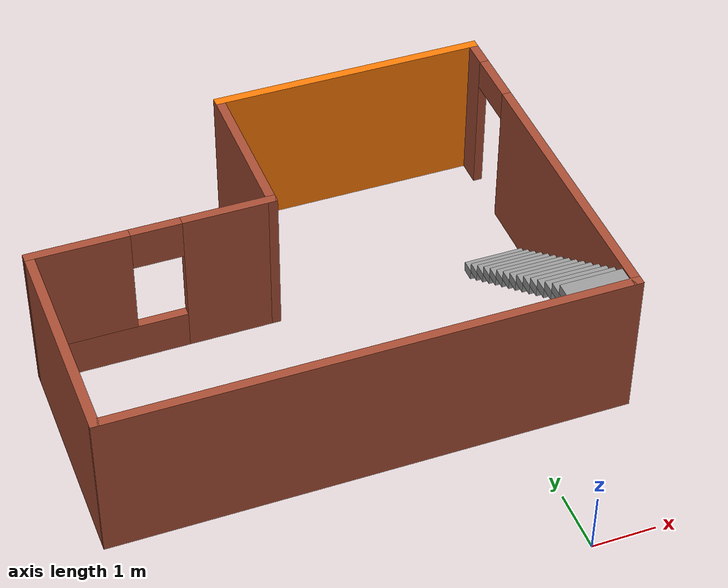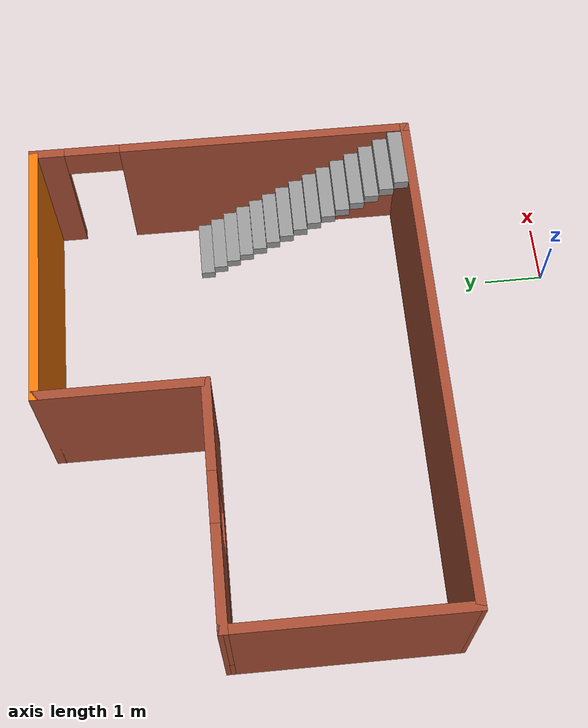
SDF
<?xml version='1.0'?>
<sdf version='1.6'>
  <model name='office'>
    <pose frame=''>-2.39856 5.48555 0 0 -0 0</pose>
    <link name='Stairs_0'>
      <visual name='Stairs_0_Visual_0'>
        <pose frame=''>3.46197 0.405401 0.083333 0 -0 0</pose>
        <geometry>
          <box>
            <size>1 0.233333 0.166667</size>
          </box>
        </geometry>
        <material>
          <script>
            <uri>file://media/materials/scripts/gazebo.material</uri>
            <name>Gazebo/Grey</name>
          </script>
          <ambient>1 1 1 1</ambient>
        </material>
        <meta>
          <layer>0</layer>
        </meta>
      </visual>
      <collision name='Stairs_0_Collision_0'>
        <geometry>
          <box>
            <size>1 0.233333 0.166667</size>
          </box>
        </geometry>
        <pose frame=''>3.46197 0.405401 0.083333 0 -0 0</pose>
      </collision>
      <visual name='Stairs_0_Visual_1'>
        <pose frame=''>3.46197 0.172068 0.25 0 -0 0</pose>
        <geometry>
          <box>
            <size>1 0.233333 0.166667</size>
          </box>
        </geometry>
        <material>
          <script>
            <uri>file://media/materials/scripts/gazebo.material</uri>
            <name>Gazebo/Grey</name>
          </script>
          <ambient>1 1 1 1</ambient>
        </material>
        <meta>
          <layer>0</layer>
        </meta>
      </visual>
      <collision name='Stairs_0_Collision_1'>
        <geometry>
          <box>
            <size>1 0.233333 0.166667</size>
          </box>
        </geometry>
        <pose frame=''>3.46197 0.172068 0.25 0 -0 0</pose>
      </collision>
      <visual name='Stairs_0_Visual_2'>
        <pose frame=''>3.46197 -0.061265 0.416667 0 -0 0</pose>
        <geometry>
          <box>
            <size>1 0.233333 0.166667</size>
          </box>
        </geometry>
        <material>
          <script>
            <uri>file://media/materials/scripts/gazebo.material</uri>
            <name>Gazebo/Grey</name>
          </script>
          <ambient>1 1 1 1</ambient>
        </material>
        <meta>
          <layer>0</layer>
        </meta>
      </visual>
      <collision name='Stairs_0_Collision_2'>
        <geometry>
          <box>
            <size>1 0.233333 0.166667</size>
          </box>
        </geometry>
        <pose frame=''>3.46197 -0.061265 0.416667 0 -0 0</pose>
      </collision>
      <visual name='Stairs_0_Visual_3'>
        <pose frame=''>3.46197 -0.294599 0.583333 0 -0 0</pose>
        <geometry>
          <box>
            <size>1 0.233333 0.166667</size>
          </box>
        </geometry>
        <material>
          <script>
            <uri>file://media/materials/scripts/gazebo.material</uri>
            <name>Gazebo/Grey</name>
          </script>
          <ambient>1 1 1 1</ambient>
        </material>
        <meta>
          <layer>0</layer>
        </meta>
      </visual>
      <collision name='Stairs_0_Collision_3'>
        <geometry>
          <box>
            <size>1 0.233333 0.166667</size>
          </box>
        </geometry>
        <pose frame=''>3.46197 -0.294599 0.583333 0 -0 0</pose>
      </collision>
      <visual name='Stairs_0_Visual_4'>
        <pose frame=''>3.46197 -0.527932 0.75 0 -0 0</pose>
        <geometry>
          <box>
            <size>1 0.233333 0.166667</size>
          </box>
        </geometry>
        <material>
          <script>
            <uri>file://media/materials/scripts/gazebo.material</uri>
            <name>Gazebo/Grey</name>
          </script>
          <ambient>1 1 1 1</ambient>
        </material>
        <meta>
          <layer>0</layer>
        </meta>
      </visual>
      <collision name='Stairs_0_Collision_4'>
        <geometry>
          <box>
            <size>1 0.233333 0.166667</size>
          </box>
        </geometry>
        <pose frame=''>3.46197 -0.527932 0.75 0 -0 0</pose>
      </collision>
      <visual name='Stairs_0_Visual_5'>
        <pose frame=''>3.46197 -0.761266 0.916667 0 -0 0</pose>
        <geometry>
          <box>
            <size>1 0.233333 0.166667</size>
          </box>
        </geometry>
        <material>
          <script>
            <uri>file://media/materials/scripts/gazebo.material</uri>
            <name>Gazebo/Grey</name>
          </script>
          <ambient>1 1 1 1</ambient>
        </material>
        <meta>
          <layer>0</layer>
        </meta>
      </visual>
      <collision name='Stairs_0_Collision_5'>
        <geometry>
          <box>
            <size>1 0.233333 0.166667</size>
          </box>
        </geometry>
        <pose frame=''>3.46197 -0.761266 0.916667 0 -0 0</pose>
      </collision>
      <visual name='Stairs_0_Visual_6'>
        <pose frame=''>3.46197 -0.994599 1.08333 0 -0 0</pose>
        <geometry>
          <box>
            <size>1 0.233333 0.166667</size>
          </box>
        </geometry>
        <material>
          <script>
            <uri>file://media/materials/scripts/gazebo.material</uri>
            <name>Gazebo/Grey</name>
          </script>
          <ambient>1 1 1 1</ambient>
        </material>
        <meta>
          <layer>0</layer>
        </meta>
      </visual>
      <collision name='Stairs_0_Collision_6'>
        <geometry>
          <box>
            <size>1 0.233333 0.166667</size>
          </box>
        </geometry>
        <pose frame=''>3.46197 -0.994599 1.08333 0 -0 0</pose>
      </collision>
      <visual name='Stairs_0_Visual_7'>
        <pose frame=''>3.46197 -1.22793 1.25 0 -0 0</pose>
        <geometry>
          <box>
            <size>1 0.233333 0.166667</size>
          </box>
        </geometry>
        <material>
          <script>
            <uri>file://media/materials/scripts/gazebo.material</uri>
            <name>Gazebo/Grey</name>
          </script>
          <ambient>1 1 1 1</ambient>
        </material>
        <meta>
          <layer>0</layer>
        </meta>
      </visual>
      <collision name='Stairs_0_Collision_7'>
        <geometry>
          <box>
            <size>1 0.233333 0.166667</size>
          </box>
        </geometry>
        <pose frame=''>3.46197 -1.22793 1.25 0 -0 0</pose>
      </collision>
      <visual name='Stairs_0_Visual_8'>
        <pose frame=''>3.46197 -1.46127 1.41667 0 -0 0</pose>
        <geometry>
          <box>
            <size>1 0.233333 0.166667</size>
          </box>
        </geometry>
        <material>
          <script>
            <uri>file://media/materials/scripts/gazebo.material</uri>
            <name>Gazebo/Grey</name>
          </script>
          <ambient>1 1 1 1</ambient>
        </material>
        <meta>
          <layer>0</layer>
        </meta>
      </visual>
      <collision name='Stairs_0_Collision_8'>
        <geometry>
          <box>
            <size>1 0.233333 0.166667</size>
          </box>
        </geometry>
        <pose frame=''>3.46197 -1.46127 1.41667 0 -0 0</pose>
      </collision>
      <visual name='Stairs_0_Visual_9'>
        <pose frame=''>3.46197 -1.6946 1.58333 0 -0 0</pose>
        <geometry>
          <box>
            <size>1 0.233333 0.166667</size>
          </box>
        </geometry>
        <material>
          <script>
            <uri>file://media/materials/scripts/gazebo.material</uri>
            <name>Gazebo/Grey</name>
          </script>
          <ambient>1 1 1 1</ambient>
        </material>
        <meta>
          <layer>0</layer>
        </meta>
      </visual>
      <collision name='Stairs_0_Collision_9'>
        <geometry>
          <box>
            <size>1 0.233333 0.166667</size>
          </box>
        </geometry>
        <pose frame=''>3.46197 -1.6946 1.58333 0 -0 0</pose>
      </collision>
      <visual name='Stairs_0_Visual_10'>
        <pose frame=''>3.46197 -1.92793 1.75 0 -0 0</pose>
        <geometry>
          <box>
            <size>1 0.233333 0.166667</size>
          </box>
        </geometry>
        <material>
          <script>
            <uri>file://media/materials/scripts/gazebo.material</uri>
            <name>Gazebo/Grey</name>
          </script>
          <ambient>1 1 1 1</ambient>
        </material>
        <meta>
          <layer>0</layer>
        </meta>
      </visual>
      <collision name='Stairs_0_Collision_10'>
        <geometry>
          <box>
            <size>1 0.233333 0.166667</size>
          </box>
        </geometry>
        <pose frame=''>3.46197 -1.92793 1.75 0 -0 0</pose>
      </collision>
      <visual name='Stairs_0_Visual_11'>
        <pose frame=''>3.46197 -2.16127 1.91667 0 -0 0</pose>
        <geometry>
          <box>
            <size>1 0.233333 0.166667</size>
          </box>
        </geometry>
        <material>
          <script>
            <uri>file://media/materials/scripts/gazebo.material</uri>
            <name>Gazebo/Grey</name>
          </script>
          <ambient>1 1 1 1</ambient>
        </material>
        <meta>
          <layer>0</layer>
        </meta>
      </visual>
      <collision name='Stairs_0_Collision_11'>
        <geometry>
          <box>
            <size>1 0.233333 0.166667</size>
          </box>
        </geometry>
        <pose frame=''>3.46197 -2.16127 1.91667 0 -0 0</pose>
      </collision>
      <visual name='Stairs_0_Visual_12'>
        <pose frame=''>3.46197 -2.3946 2.08333 0 -0 0</pose>
        <geometry>
          <box>
            <size>1 0.233333 0.166667</size>
          </box>
        </geometry>
        <material>
          <script>
            <uri>file://media/materials/scripts/gazebo.material</uri>
            <name>Gazebo/Grey</name>
          </script>
          <ambient>1 1 1 1</ambient>
        </material>
        <meta>
          <layer>0</layer>
        </meta>
      </visual>
      <collision name='Stairs_0_Collision_12'>
        <geometry>
          <box>
            <size>1 0.233333 0.166667</size>
          </box>
        </geometry>
        <pose frame=''>3.46197 -2.3946 2.08333 0 -0 0</pose>
      </collision>
      <visual name='Stairs_0_Visual_13'>
        <pose frame=''>3.46197 -2.62793 2.25 0 -0 0</pose>
        <geometry>
          <box>
            <size>1 0.233333 0.166667</size>
          </box>
        </geometry>
        <material>
          <script>
            <uri>file://media/materials/scripts/gazebo.material</uri>
            <name>Gazebo/Grey</name>
          </script>
          <ambient>1 1 1 1</ambient>
        </material>
        <meta>
          <layer>0</layer>
        </meta>
      </visual>
      <collision name='Stairs_0_Collision_13'>
        <geometry>
          <box>
            <size>1 0.233333 0.166667</size>
          </box>
        </geometry>
        <pose frame=''>3.46197 -2.62793 2.25 0 -0 0</pose>
      </collision>
      <visual name='Stairs_0_Visual_14'>
        <pose frame=''>3.46197 -2.86126 2.41667 0 -0 0</pose>
        <geometry>
          <box>
            <size>1 0.233333 0.166667</size>
          </box>
        </geometry>
        <material>
          <script>
            <uri>file://media/materials/scripts/gazebo.material</uri>
            <name>Gazebo/Grey</name>
          </script>
          <ambient>1 1 1 1</ambient>
        </material>
        <meta>
          <layer>0</layer>
        </meta>
      </visual>
      <collision name='Stairs_0_Collision_14'>
        <geometry>
          <box>
            <size>1 0.233333 0.166667</size>
          </box>
        </geometry>
        <pose frame=''>3.46197 -2.86126 2.41667 0 -0 0</pose>
      </collision>
    </link>
    <link name='Wall_10'>
      <pose frame=''>-2.17494 0.503453 0 0 -0 3.14159</pose>
      <visual name='Wall_10_Visual_0'>
        <pose frame=''>-1.20118 0 1.25 0 -0 0</pose>
        <geometry>
          <box>
            <size>1.50063 0.15 2.5</size>
          </box>
        </geometry>
        <material>
          <script>
            <uri>file://media/materials/scripts/gazebo.material</uri>
            <name>Gazebo/Bricks</name>
          </script>
          <ambient>0.996078 0.47451 0.0196078 1</ambient>
        </material>
        <meta>
          <layer>0</layer>
        </meta>
      </visual>
      <collision name='Wall_10_Collision_0'>
        <geometry>
          <box>
            <size>1.50063 0.15 2.5</size>
          </box>
        </geometry>
        <pose frame=''>-1.20118 0 1.25 0 -0 0</pose>
      </collision>
      <visual name='Wall_10_Visual_1'>
        <pose frame=''>0.750315 0 0.325 0 -0 0</pose>
        <geometry>
          <box>
            <size>2.40237 0.15 0.65</size>
          </box>
        </geometry>
        <material>
          <script>
            <uri>file://media/materials/scripts/gazebo.material</uri>
            <name>Gazebo/Bricks</name>
          </script>
          <ambient>0.996078 0.47451 0.0196078 1</ambient>
        </material>
        <meta>
          <layer>0</layer>
        </meta>
      </visual>
      <collision name='Wall_10_Collision_1'>
        <geometry>
          <box>
            <size>2.40237 0.15 0.65</size>
          </box>
        </geometry>
        <pose frame=''>0.750315 0 0.325 0 -0 0</pose>
      </collision>
      <visual name='Wall_10_Visual_2'>
        <pose frame=''>1.15031 0 1.575 0 -0 0</pose>
        <geometry>
          <box>
            <size>1.60237 0.15 1.85</size>
          </box>
        </geometry>
        <material>
          <script>
            <uri>file://media/materials/scripts/gazebo.material</uri>
            <name>Gazebo/Bricks</name>
          </script>
          <ambient>0.996078 0.47451 0.0196078 1</ambient>
        </material>
        <meta>
          <layer>0</layer>
        </meta>
      </visual>
      <collision name='Wall_10_Collision_2'>
        <geometry>
          <box>
            <size>1.60237 0.15 1.85</size>
          </box>
        </geometry>
        <pose frame=''>1.15031 0 1.575 0 -0 0</pose>
      </collision>
      <visual name='Wall_10_Visual_3'>
        <pose frame=''>-0.050871 0 2.175 0 -0 0</pose>
        <geometry>
          <box>
            <size>0.8 0.15 0.65</size>
          </box>
        </geometry>
        <material>
          <script>
            <uri>file://media/materials/scripts/gazebo.material</uri>
            <name>Gazebo/Bricks</name>
          </script>
          <ambient>0.996078 0.47451 0.0196078 1</ambient>
        </material>
        <meta>
          <layer>0</layer>
        </meta>
      </visual>
      <collision name='Wall_10_Collision_3'>
        <geometry>
          <box>
            <size>0.8 0.15 0.65</size>
          </box>
        </geometry>
        <pose frame=''>-0.050871 0 2.175 0 -0 0</pose>
      </collision>
    </link>
    <link name='Wall_5'>
      <collision name='Wall_5_Collision'>
        <geometry>
          <box>
            <size>3.7032 0.15 2.5</size>
          </box>
        </geometry>
        <pose frame=''>0 0 1.25 0 -0 0</pose>
      </collision>
      <visual name='Wall_5_Visual'>
        <pose frame=''>0 0 1.25 0 -0 0</pose>
        <geometry>
          <box>
            <size>3.7032 0.15 2.5</size>
          </box>
        </geometry>
        <material>
          <script>
            <uri>file://media/materials/scripts/gazebo.material</uri>
            <name>Gazebo/Bricks</name>
          </script>
          <ambient>0.996078 0.47451 0.0196078 1</ambient>
        </material>
        <meta>
          <layer>0</layer>
        </meta>
      </visual>
      <pose frame=''>-4.04997 -1.27332 0 0 0 -1.56997</pose>
    </link>
    <link name='Wall_6'>
      <collision name='Wall_6_Collision'>
        <geometry>
          <box>
            <size>8.25 0.15 2.5</size>
          </box>
        </geometry>
        <pose frame=''>0 0 1.25 0 -0 0</pose>
      </collision>
      <visual name='Wall_6_Visual'>
        <pose frame=''>0 0 1.25 0 -0 0</pose>
        <geometry>
          <box>
            <size>8.25 0.15 2.5</size>
          </box>
        </geometry>
        <material>
          <script>
            <uri>file://media/materials/scripts/gazebo.material</uri>
            <name>Gazebo/Bricks</name>
          </script>
          <ambient>0.996078 0.47451 0.0196078 1</ambient>
        </material>
        <meta>
          <layer>0</layer>
        </meta>
      </visual>
      <pose frame=''>0.001502 -3.05009 0 0 -0 0</pose>
    </link>
    <link name='Wall_7'>
      <pose frame=''>4.0515 -8.5e-05 0 0 -0 1.5708</pose>
      <visual name='Wall_7_Visual_0'>
        <pose frame=''>-0.738911 0 1.25 0 -0 0</pose>
        <geometry>
          <box>
            <size>4.77218 0.15 2.5</size>
          </box>
        </geometry>
        <material>
          <script>
            <uri>file://media/materials/scripts/gazebo.material</uri>
            <name>Gazebo/Bricks</name>
          </script>
          <ambient>0.996078 0.47451 0.0196078 1</ambient>
        </material>
        <meta>
          <layer>0</layer>
        </meta>
      </visual>
      <collision name='Wall_7_Collision_0'>
        <geometry>
          <box>
            <size>4.77218 0.15 2.5</size>
          </box>
        </geometry>
        <pose frame=''>-0.738911 0 1.25 0 -0 0</pose>
      </collision>
      <visual name='Wall_7_Visual_1'>
        <pose frame=''>2.83609 0 1.25 0 -0 0</pose>
        <geometry>
          <box>
            <size>0.577822 0.15 2.5</size>
          </box>
        </geometry>
        <material>
          <script>
            <uri>file://media/materials/scripts/gazebo.material</uri>
            <name>Gazebo/Bricks</name>
          </script>
          <ambient>0.996078 0.47451 0.0196078 1</ambient>
        </material>
        <meta>
          <layer>0</layer>
        </meta>
      </visual>
      <collision name='Wall_7_Collision_1'>
        <geometry>
          <box>
            <size>0.577822 0.15 2.5</size>
          </box>
        </geometry>
        <pose frame=''>2.83609 0 1.25 0 -0 0</pose>
      </collision>
      <visual name='Wall_7_Visual_2'>
        <pose frame=''>2.09718 0 2.25 0 -0 0</pose>
        <geometry>
          <box>
            <size>0.9 0.15 0.5</size>
          </box>
        </geometry>
        <material>
          <script>
            <uri>file://media/materials/scripts/gazebo.material</uri>
            <name>Gazebo/Bricks</name>
          </script>
          <ambient>0.996078 0.47451 0.0196078 1</ambient>
        </material>
        <meta>
          <layer>0</layer>
        </meta>
      </visual>
      <collision name='Wall_7_Collision_2'>
        <geometry>
          <box>
            <size>0.9 0.15 0.5</size>
          </box>
        </geometry>
        <pose frame=''>2.09718 0 2.25 0 -0 0</pose>
      </collision>
    </link>
    <link name='Wall_8'>
      <collision name='Wall_8_Collision'>
        <geometry>
          <box>
            <size>4.5 0.15 2.5</size>
          </box>
        </geometry>
        <pose frame=''>0 0 1.25 0 -0 0</pose>
      </collision>
      <visual name='Wall_8_Visual'>
        <pose frame=''>0 0 1.25 0 -0 0</pose>
        <geometry>
          <box>
            <size>4.5 0.15 2.5</size>
          </box>
        </geometry>
        <material>
          <script>
            <uri>file://media/materials/scripts/gazebo.material</uri>
            <name>Gazebo/Grey</name>
          </script>
          <ambient>0.996078 0.47451 0.0196078 1</ambient>
        </material>
        <meta>
          <layer>0</layer>
        </meta>
      </visual>
      <pose frame=''>1.8765 3.04991 0 0 -0 3.14159</pose>
    </link>
    <link name='Wall_9'>
      <collision name='Wall_9_Collision'>
        <geometry>
          <box>
            <size>2.6968 0.15 2.5</size>
          </box>
        </geometry>
        <pose frame=''>0 0 1.25 0 -0 0</pose>
      </collision>
      <visual name='Wall_9_Visual'>
        <pose frame=''>0 0 1.25 0 -0 0</pose>
        <geometry>
          <box>
            <size>2.6968 0.15 2.5</size>
          </box>
        </geometry>
        <material>
          <script>
            <uri>file://media/materials/scripts/gazebo.material</uri>
            <name>Gazebo/Bricks</name>
          </script>
          <ambient>0.996078 0.47451 0.0196078 1</ambient>
        </material>
        <meta>
          <layer>0</layer>
        </meta>
      </visual>
      <pose frame=''>-0.298469 1.77668 0 0 0 -1.57077</pose>
    </link>
    <static>1</static>
  </model>
</sdf>
